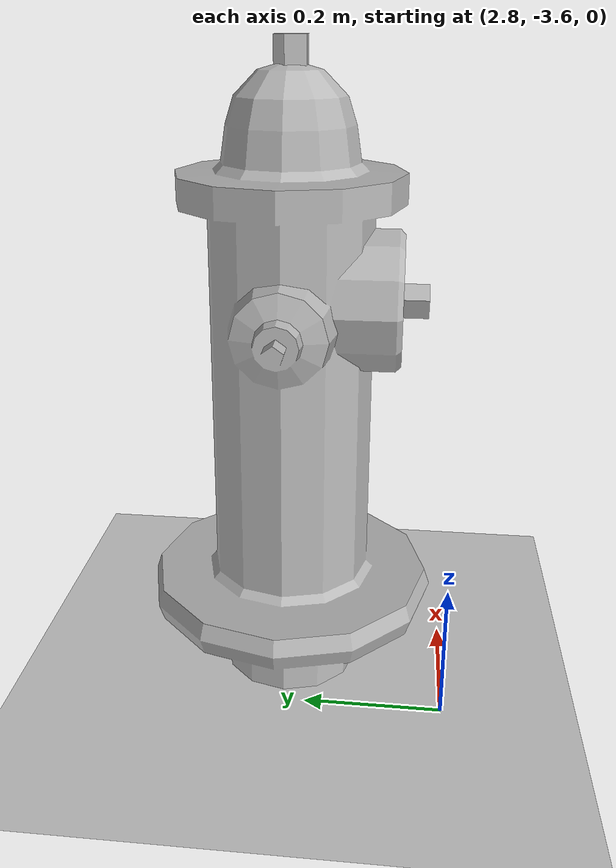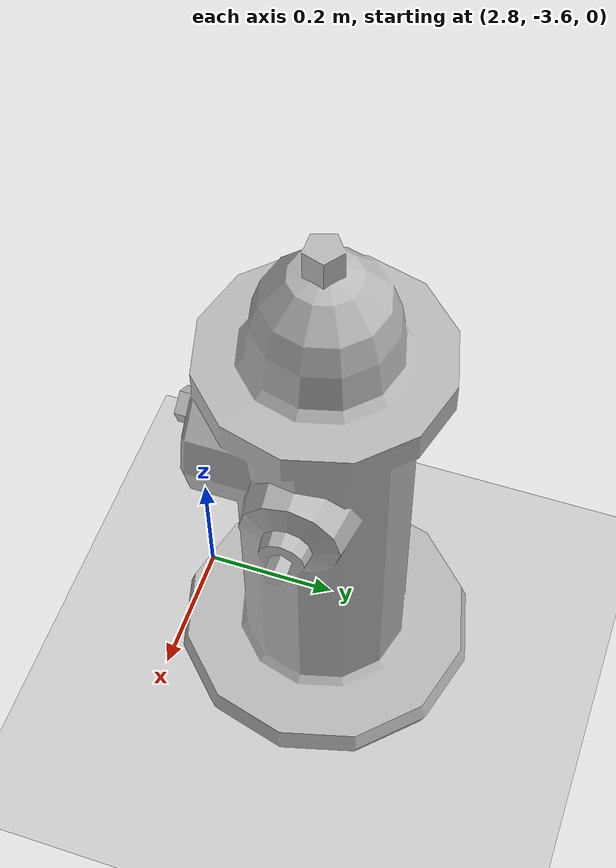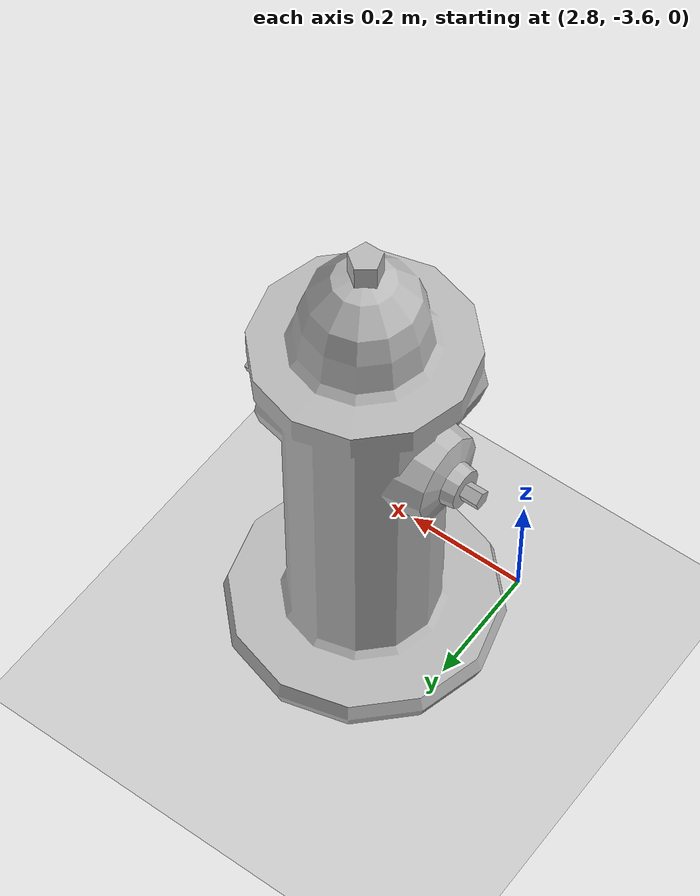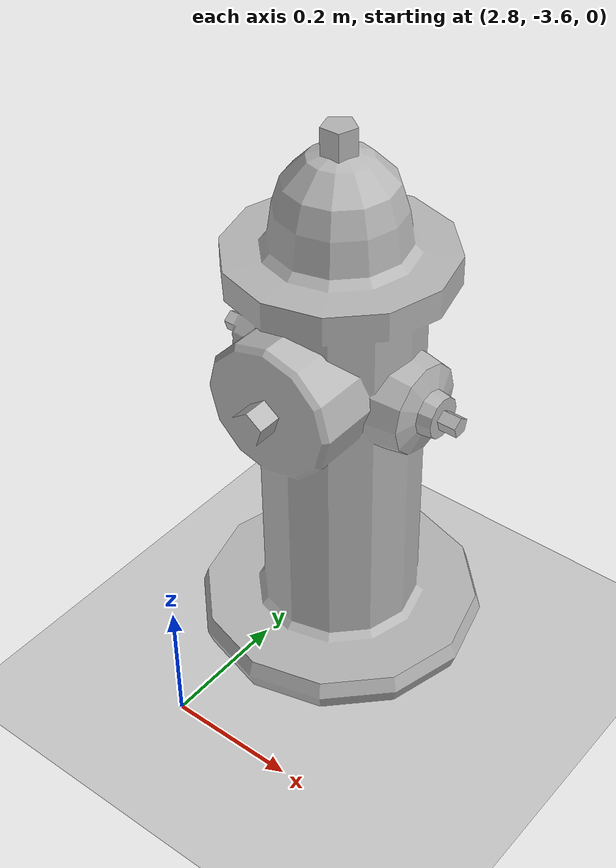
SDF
<sdf version='1.10'>
  <world name='empty'>
    <physics name='1ms' type='ignored'>
      <max_step_size>0.001</max_step_size>
      <real_time_factor>1</real_time_factor>
      <real_time_update_rate>1000</real_time_update_rate>
    </physics>
    <plugin name='gz::sim::systems::Physics' filename='gz-sim-physics-system'/>
    <plugin name='gz::sim::systems::UserCommands' filename='gz-sim-user-commands-system'/>
    <plugin name='gz::sim::systems::SceneBroadcaster' filename='gz-sim-scene-broadcaster-system'/>
    <plugin name='gz::sim::systems::Contact' filename='gz-sim-contact-system'/>
    <plugin name='gz::sim::systems::Sensors' filename='gz-sim-sensors-system'/>
    <plugin name='gz::sim::systems::Imu' filename='gz-sim-imu-system'/>
    <plugin name='gz::sim::systems::NavSat' filename='gz-sim-navsat-system'/>
    <spherical_coordinates>
      <surface_model>EARTH_WGS84</surface_model>
      <world_frame_orientation>ENU</world_frame_orientation>
      <latitude_deg>44.403373000000002</latitude_deg>
      <longitude_deg>8.9481067999999997</longitude_deg>
      <elevation>0</elevation>
      <heading_deg>0</heading_deg>
    </spherical_coordinates>
    <gravity>0 0 -9.8000000000000007</gravity>
    <magnetic_field>5.5644999999999998e-06 2.2875799999999999e-05 -4.2388400000000002e-05</magnetic_field>
    <atmosphere type='adiabatic'/>
    <scene>
      <ambient>0.400000006 0.400000006 0.400000006 1</ambient>
      <background>0.699999988 0.699999988 0.699999988 1</background>
      <shadows>true</shadows>
    </scene>
    <model name='ground_plane'>
      <static>true</static>
      <link name='link'>
        <collision name='collision'>
          <geometry>
            <plane>
              <normal>0 0 1</normal>
              <size>100 100</size>
            </plane>
          </geometry>
          <surface>
            <friction>
              <ode>
                <mu>50</mu>
              </ode>
            </friction>
            <bounce/>
            <contact/>
          </surface>
        </collision>
        <visual name='visual'>
          <geometry>
            <plane>
              <normal>0 0 1</normal>
              <size>100 100</size>
            </plane>
          </geometry>
          <material>
            <ambient>0.800000012 0.800000012 0.800000012 1</ambient>
            <diffuse>0.800000012 0.800000012 0.800000012 1</diffuse>
            <specular>0.800000012 0.800000012 0.800000012 1</specular>
          </material>
        </visual>
        <pose>0 0 0 0 0 0</pose>
        <inertial>
          <pose>0 0 0 0 0 0</pose>
          <mass>1</mass>
          <inertia>
            <ixx>1</ixx>
            <ixy>0</ixy>
            <ixz>0</ixz>
            <iyy>1</iyy>
            <iyz>0</iyz>
            <izz>1</izz>
          </inertia>
        </inertial>
        <enable_wind>false</enable_wind>
      </link>
      <pose>0 0 0 0 0 0</pose>
      <self_collide>false</self_collide>
    </model>

    <model name='fire_hydrant'>
      <static>true</static>
      <link name='link'>
        <collision name='collision'>
          <geometry>
            <mesh>
              <uri>file:///home/utente/gazebo_models/fire_hydrant/model://fire_hydrant/meshes/fire_hydrant.dae</uri>
            </mesh>
          </geometry>
        </collision>
        <visual name='visual'>
          <geometry>
            <mesh>
              <uri>file:///home/utente/gazebo_models/fire_hydrant/model://fire_hydrant/meshes/fire_hydrant.dae</uri>
            </mesh>
          </geometry>
        </visual>
        <pose>0 0 0 0 0 0</pose>
        <inertial>
          <pose>0 0 0 0 0 0</pose>
          <mass>1</mass>
          <inertia>
            <ixx>1</ixx>
            <ixy>0</ixy>
            <ixz>0</ixz>
            <iyy>1</iyy>
            <iyz>0</iyz>
            <izz>1</izz>
          </inertia>
        </inertial>
        <enable_wind>false</enable_wind>
      </link>
      <pose>2.9239178703563429 -3.3666297944506622 0 0 0 0</pose>
      <self_collide>false</self_collide>
    </model>
    <light name='sun' type='directional'>
      <pose>0 0 10 0 0 0</pose>
      <cast_shadows>true</cast_shadows>
      <intensity>1</intensity>
      <direction>-0.5 0.10000000000000001 -0.90000000000000002</direction>
      <diffuse>0.800000012 0.800000012 0.800000012 1</diffuse>
      <specular>0.200000003 0.200000003 0.200000003 1</specular>
      <attenuation>
        <range>1000</range>
        <linear>0.01</linear>
        <constant>0.90000000000000002</constant>
        <quadratic>0.001</quadratic>
      </attenuation>
      <spot>
        <inner_angle>0</inner_angle>
        <outer_angle>0</outer_angle>
        <falloff>0</falloff>
      </spot>
    </light>
  </world>
</sdf>
